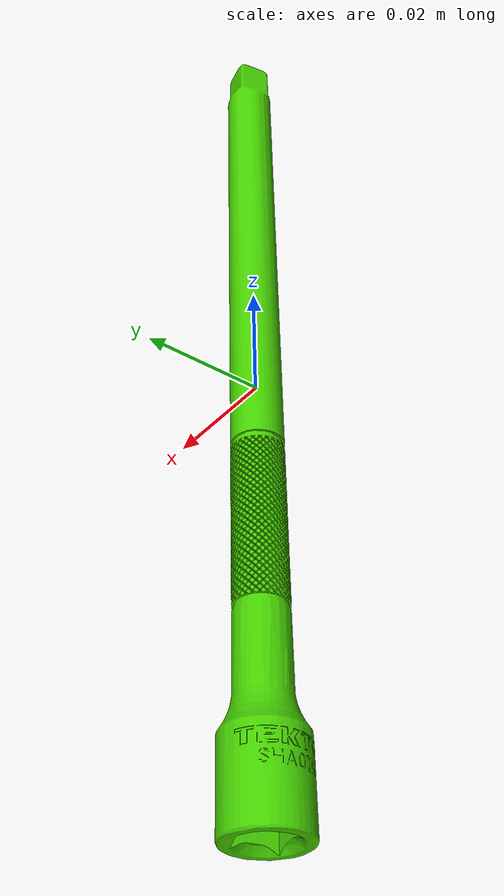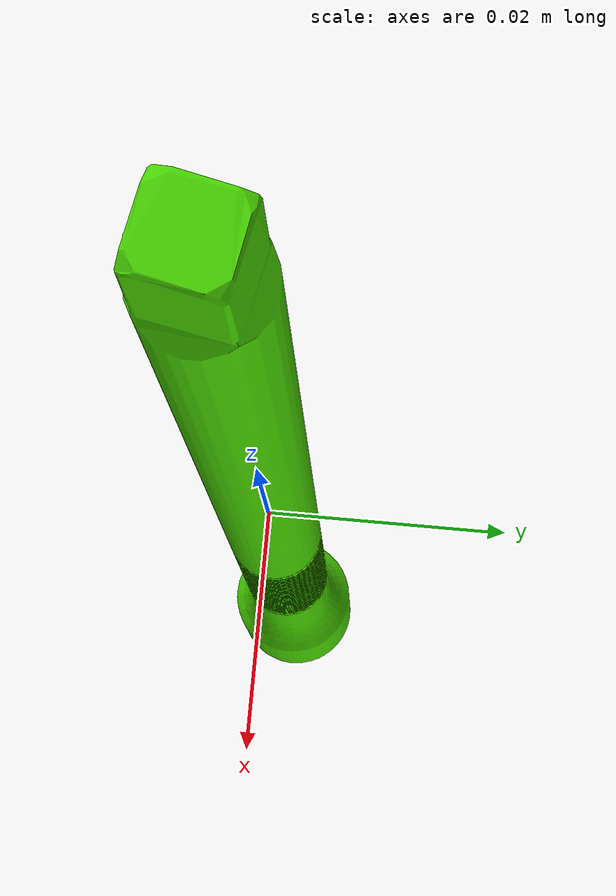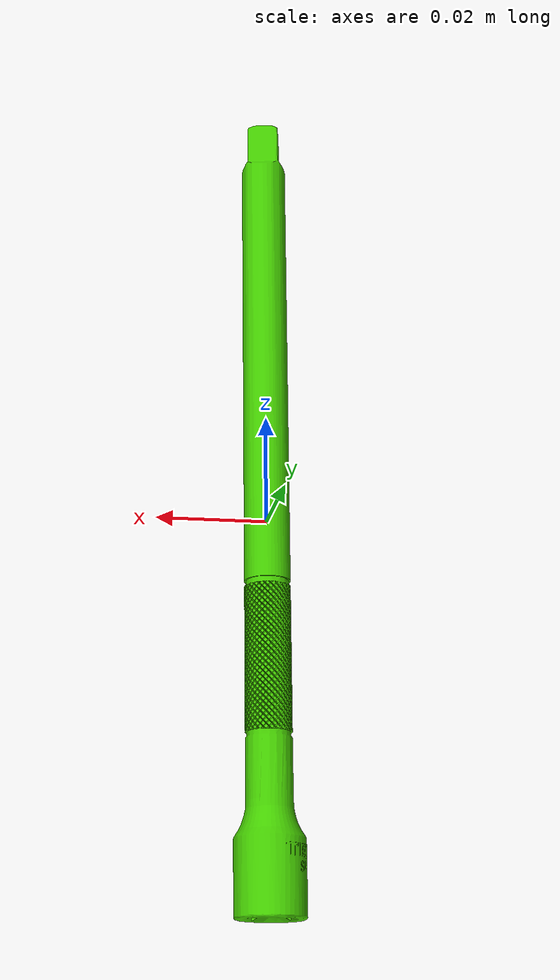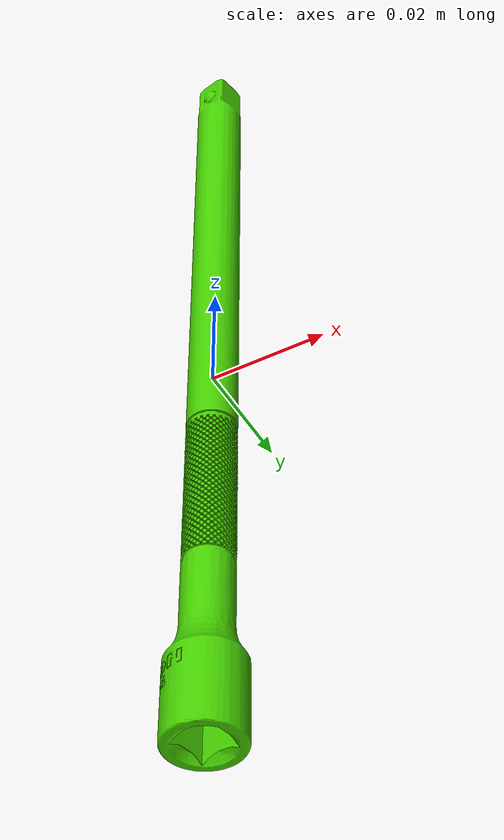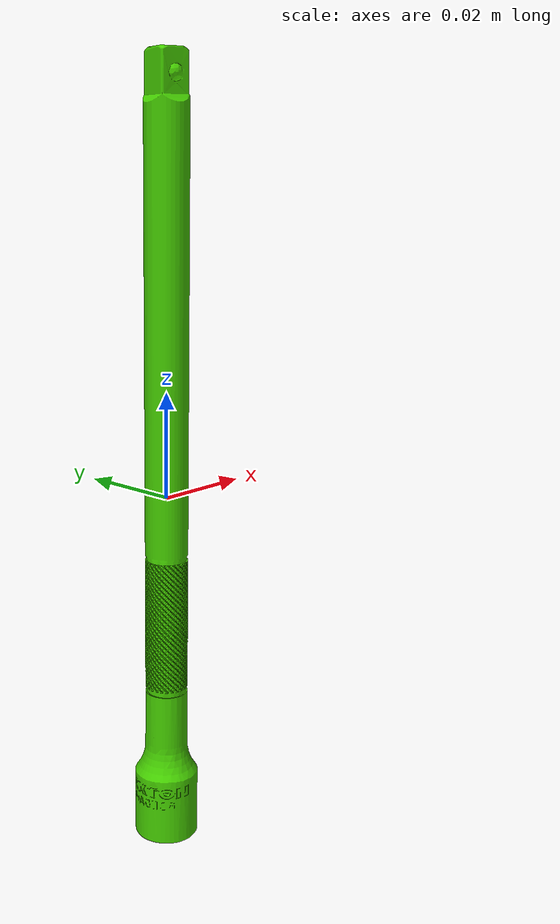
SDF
<?xml version="1.0"?>
<sdf version="1.7">
  <model name="socket_extension_1_4in_150mm_bright">
    <pose>0 0 0 0 0 0</pose>
    <static>false</static>
    <link name="link">
      <!-- link frame = tool CoM; Z = long axis (+ toward tool end), X = forward, Y = Z x X -->
      <inertial>
        <pose>0 0 0 0 0 0</pose>
        <mass>0.064378</mass>
        <inertia>
          <ixx>1.248796e-04</ixx>
          <ixy>1.101591e-12</ixy>
          <ixz>1.283174e-10</ixz>
          <iyy>1.248789e-04</iyy>
          <iyz>4.996970e-10</iyz>
          <izz>6.831579e-07</izz>
        </inertia>
      </inertial>
      <collision name="collision">
        <geometry>
          <mesh>
            <uri>model://socket_extension_1_4in_150mm/meshes/socket_extension_1_4in_150mm.dae</uri>
          </mesh>
        </geometry>
      </collision>
      <visual name="visual">
        <geometry>
          <mesh>
            <uri>model://socket_extension_1_4in_150mm/meshes/socket_extension_1_4in_150mm.dae</uri>
          </mesh>
        </geometry>
        <material>
          <ambient>0.124 0.369 0.000 1.0</ambient>
          <diffuse>0.275 0.820 0.000 1.0</diffuse>
          <specular>0.85 0.85 0.85 1.0</specular>
          <emissive>0 0 0 1.0</emissive>
        </material>
      </visual>
    </link>
  </model>
</sdf>
